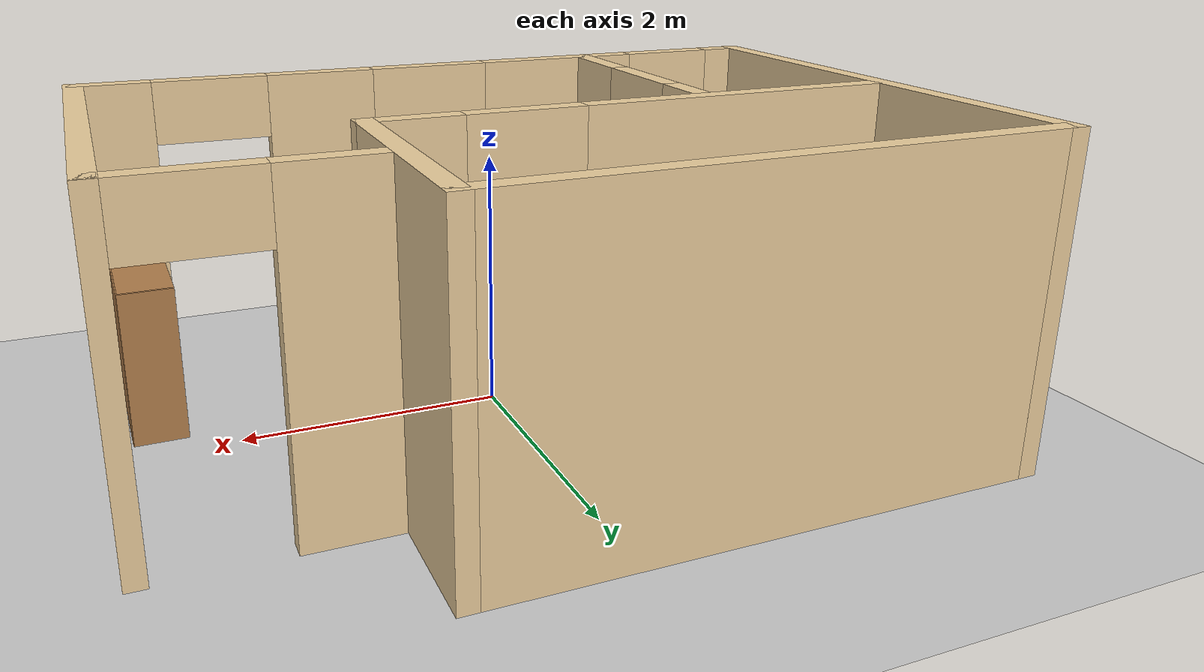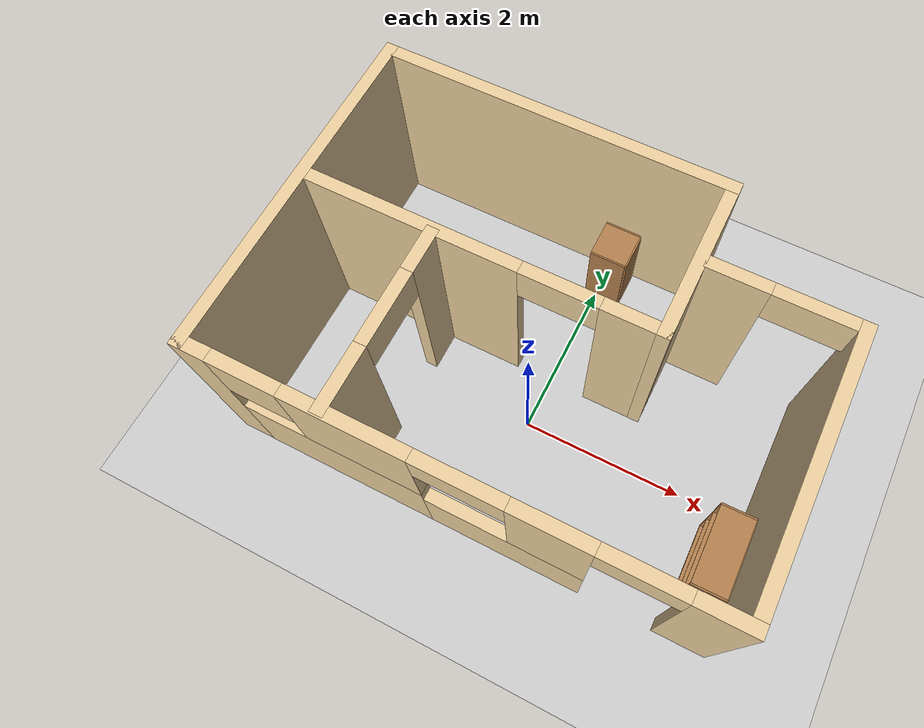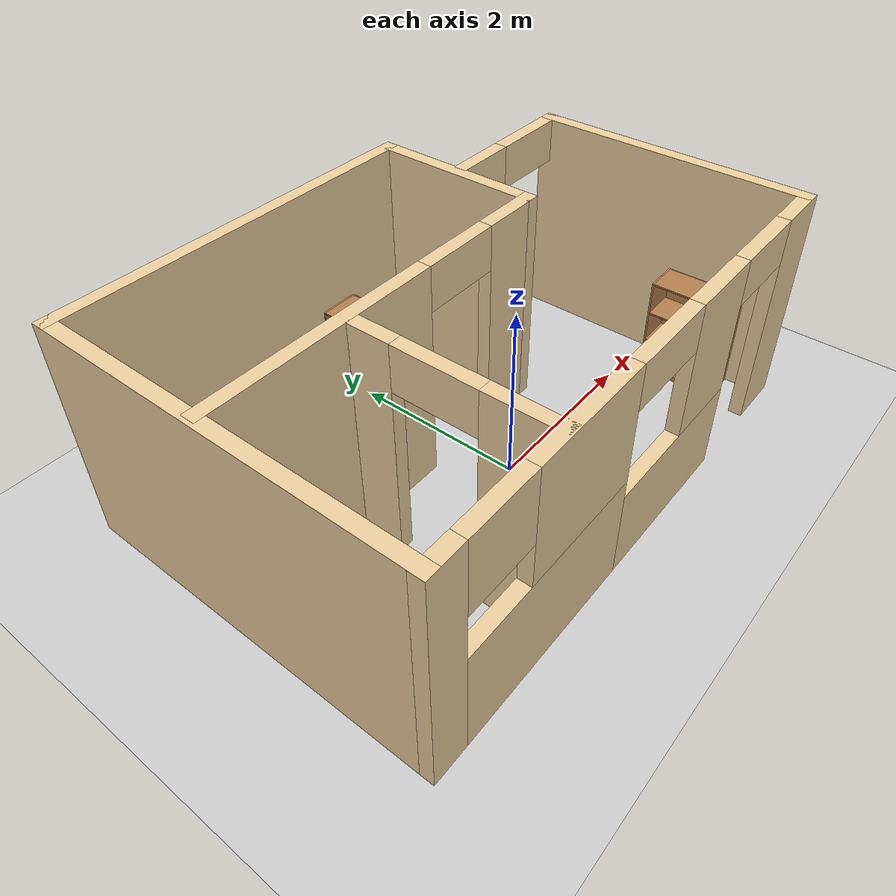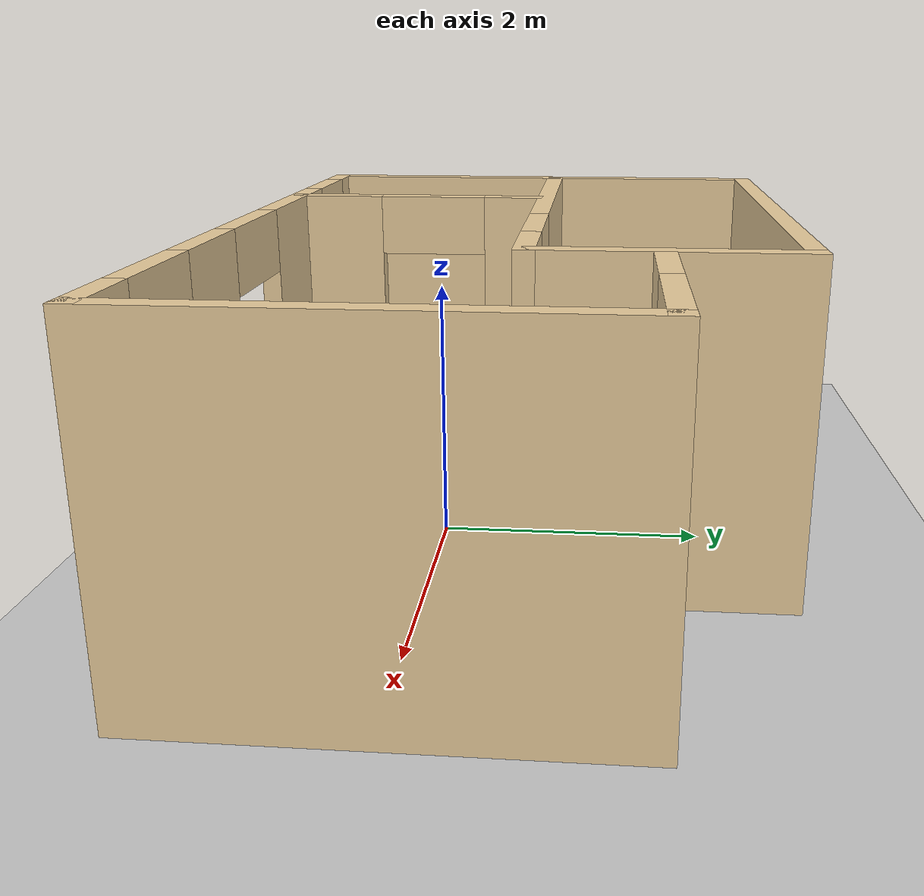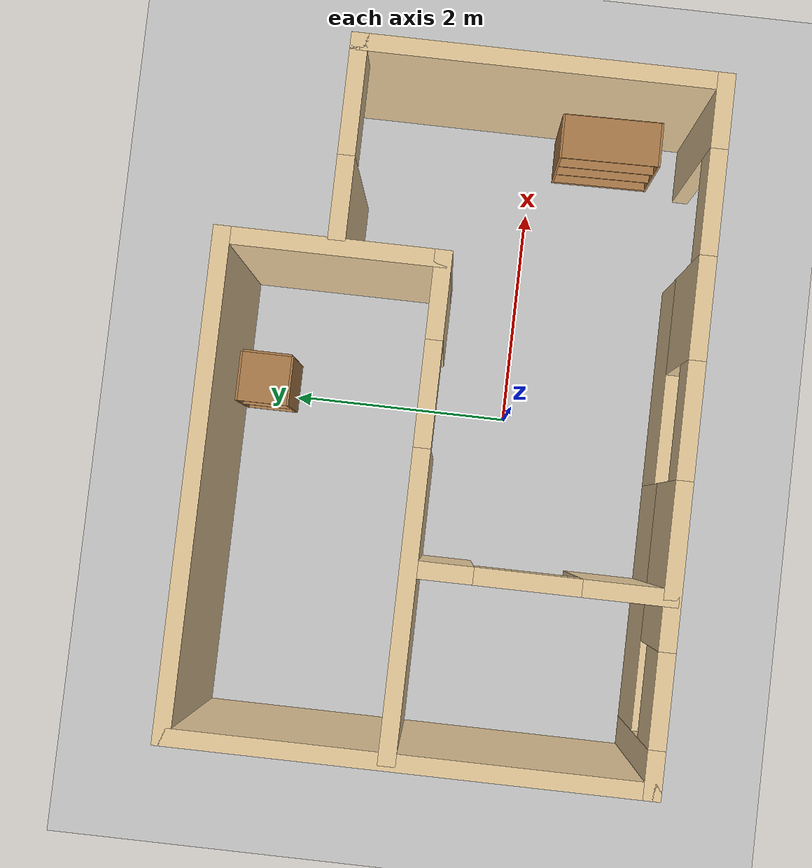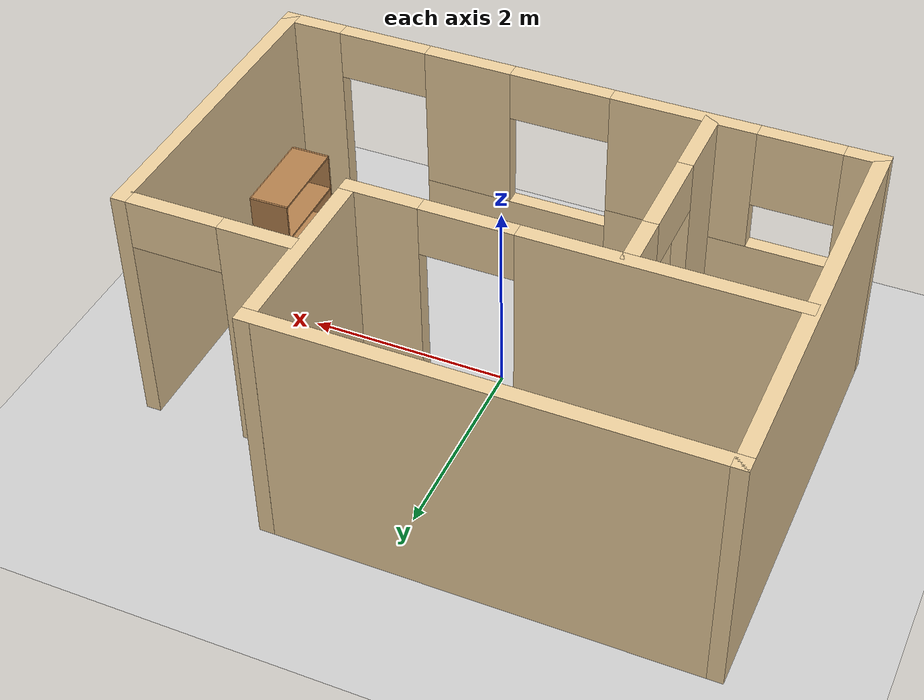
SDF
<sdf version="1.6">
 <world name="default">
  <light name="sun" type="directional">
   <pose>0 0 10 0 -0 0</pose>
   <diffuse>0.8 0.8 0.8 1</diffuse>
   <specular>0.2 0.2 0.2 1</specular>
   <attenuation>
    <range>1000</range>
    <constant>0.9</constant>
    <linear>0.01</linear>
    <quadratic>0.001</quadratic>
   </attenuation>
   <direction>-0.5 0.1 -0.9</direction>
  </light>
  <model name="ground_plane">
   <static>1</static>
   <link name="link">
    <collision name="collision">
     <geometry><plane><normal>0 0 1</normal><size>100 100</size></plane></geometry>
     <surface>
      <contact><collide_bitmask>65535</collide_bitmask></contact>
      <friction><ode><mu>100</mu><mu2>50</mu2></ode></friction>
     </surface>
    </collision>
    <visual name="visual">
     <cast_shadows>0</cast_shadows>
     <geometry><plane><normal>0 0 1</normal><size>100 100</size></plane></geometry>
     <material>
      <script><uri>file://media/materials/scripts/gazebo.material</uri><name>Gazebo/Grey</name></script>
     </material>
    </visual>
   </link>
  </model>
  <gravity>0 0 -9.8</gravity>
  <magnetic_field>6e-06 2.3e-05 -4.2e-05</magnetic_field>
  <atmosphere type="adiabatic"/>
  <physics name="default_physics" default="0" type="ode">
   <max_step_size>0.001</max_step_size>
   <real_time_factor>1</real_time_factor>
   <real_time_update_rate>1000</real_time_update_rate>
  </physics>
  <scene><ambient>0.4 0.4 0.4 1</ambient><background>0.7 0.7 0.7 1</background><shadows>1</shadows></scene>
  <audio><device>default</device></audio>
  <spherical_coordinates>
   <surface_model>EARTH_WGS84</surface_model>
   <latitude_deg>0</latitude_deg>
   <longitude_deg>0</longitude_deg>
   <elevation>0</elevation>
   <heading_deg>0</heading_deg>
  </spherical_coordinates>
  <model name="home">
   <pose>-0.08018 0.543704 0 0 -0 0</pose>
   <link name="Wall_0">
    <collision name="Wall_0_Collision">
     <geometry><box><size>4.184 0.15 2.5</size></box></geometry>
     <pose>0 0 1.25 0 -0 0</pose>
    </collision>
    <visual name="Wall_0_Visual">
     <pose>0 0 1.25 0 -0 0</pose>
     <geometry><box><size>4.184 0.15 2.5</size></box></geometry>
     <material>
      <script><uri>file://media/materials/scripts/gazebo.material</uri><name>Gazebo/Grey</name></script>
      <ambient>0.921569 0.807843 0.615686 1</ambient>
     </material>
     <meta><layer>0</layer></meta>
    </visual>
    <pose>-2.95 -0.000177 0 0 -0 1.5708</pose>
   </link>
   <link name="Wall_1">
    <pose>-0.87 2.01682 0 0 -0 0</pose>
    <visual name="Wall_1_Visual_0">
     <pose>0 0 1.25 0 -0 0</pose>
     <geometry><box><size>4.31 0.15 2.5</size></box></geometry>
     <material>
      <script><uri>file://media/materials/scripts/gazebo.material</uri><name>Gazebo/Grey</name></script>
      <ambient>0.921569 0.807843 0.615686 1</ambient>
     </material>
     <meta><layer>0</layer></meta>
    </visual>
    <collision name="Wall_1_Collision_0">
     <geometry><box><size>4.31 0.15 2.5</size></box></geometry>
     <pose>0 0 1.25 0 -0 0</pose>
    </collision>
   </link>
   <link name="Wall_2">
    <collision name="Wall_2_Collision">
     <geometry><box><size>2.00271 0.15 2.5</size></box></geometry>
     <pose>0 0 1.25 0 -0 0</pose>
    </collision>
    <visual name="Wall_2_Visual">
     <pose>0 0 1.25 0 -0 0</pose>
     <geometry><box><size>2.00271 0.15 2.5</size></box></geometry>
     <material>
      <script><uri>file://media/materials/scripts/gazebo.material</uri><name>Gazebo/Grey</name></script>
      <ambient>0.921569 0.807843 0.615686 1</ambient>
     </material>
     <meta><layer>0</layer></meta>
    </visual>
    <pose>1.21 1.09082 0 0 -0 -1.5708</pose>
   </link>
   <link name="Wall_3">
    <pose>-0.849886 0.164732 0 0 -0 -3.14155</pose>
    <visual name="Wall_3_Visual_0">
     <pose>-1.75754 0 1.25 0 -0 0</pose>
     <geometry><box><size>0.754702 0.15 2.5</size></box></geometry>
     <material>
      <script><uri>file://media/materials/scripts/gazebo.material</uri><name>Gazebo/Grey</name></script>
      <ambient>0.921569 0.807843 0.615686 1</ambient>
     </material>
     <meta><layer>0</layer></meta>
    </visual>
    <collision name="Wall_3_Collision_0">
     <geometry><box><size>0.754702 0.15 2.5</size></box></geometry>
     <pose>-1.75754 0 1.25 0 -0 0</pose>
    </collision>
    <visual name="Wall_3_Visual_1">
     <pose>0.827351 0 1.25 0 -0 0</pose>
     <geometry><box><size>2.61507 0.15 2.5</size></box></geometry>
     <material>
      <script><uri>file://media/materials/scripts/gazebo.material</uri><name>Gazebo/Grey</name></script>
      <ambient>0.921569 0.807843 0.615686 1</ambient>
     </material>
     <meta><layer>0</layer></meta>
    </visual>
    <collision name="Wall_3_Collision_1">
     <geometry><box><size>2.61507 0.15 2.5</size></box></geometry>
     <pose>0.827351 0 1.25 0 -0 0</pose>
    </collision>
    <visual name="Wall_3_Visual_2">
     <pose>-0.930184 0 2.25 0 -0 0</pose>
     <geometry><box><size>0.9 0.15 0.5</size></box></geometry>
     <material>
      <script><uri>file://media/materials/scripts/gazebo.material</uri><name>Gazebo/Grey</name></script>
      <ambient>0.921569 0.807843 0.615686 1</ambient>
     </material>
     <meta><layer>0</layer></meta>
    </visual>
    <collision name="Wall_3_Collision_2">
     <geometry><box><size>0.9 0.15 0.5</size></box></geometry>
     <pose>-0.930184 0 2.25 0 -0 0</pose>
    </collision>
   </link>
   <link name="Wall_5">
    <pose>-0 -2.01718 0 0 -0 0</pose>
    <visual name="Wall_5_Visual_0">
     <pose>-2.81883 0 1.25 0 -0 0</pose>
     <geometry><box><size>0.412348 0.15 2.5</size></box></geometry>
     <material>
      <script><uri>file://media/materials/scripts/gazebo.material</uri><name>Gazebo/Grey</name></script>
      <ambient>0.921569 0.807843 0.615686 1</ambient>
     </material>
     <meta><layer>0</layer></meta>
    </visual>
    <collision name="Wall_5_Collision_0">
     <geometry><box><size>0.412348 0.15 2.5</size></box></geometry>
     <pose>-2.81883 0 1.25 0 -0 0</pose>
    </collision>
    <visual name="Wall_5_Visual_1">
     <pose>2.70287 0 1.25 0 -0 0</pose>
     <geometry><box><size>0.644256 0.15 2.5</size></box></geometry>
     <material>
      <script><uri>file://media/materials/scripts/gazebo.material</uri><name>Gazebo/Grey</name></script>
      <ambient>0.921569 0.807843 0.615686 1</ambient>
     </material>
     <meta><layer>0</layer></meta>
    </visual>
    <collision name="Wall_5_Collision_1">
     <geometry><box><size>0.644256 0.15 2.5</size></box></geometry>
     <pose>2.70287 0 1.25 0 -0 0</pose>
    </collision>
    <visual name="Wall_5_Visual_2">
     <pose>-1.50612 0 0.6 0 -0 0</pose>
     <geometry><box><size>2.21306 0.15 1.2</size></box></geometry>
     <material>
      <script><uri>file://media/materials/scripts/gazebo.material</uri><name>Gazebo/Grey</name></script>
      <ambient>0.921569 0.807843 0.615686 1</ambient>
     </material>
     <meta><layer>0</layer></meta>
    </visual>
    <collision name="Wall_5_Collision_2">
     <geometry><box><size>2.21306 0.15 1.2</size></box></geometry>
     <pose>-1.50612 0 0.6 0 -0 0</pose>
    </collision>
    <visual name="Wall_5_Visual_3">
     <pose>0.540576 0 0.5 0 -0 0</pose>
     <geometry><box><size>1.88034 0.15 1</size></box></geometry>
     <material>
      <script><uri>file://media/materials/scripts/gazebo.material</uri><name>Gazebo/Grey</name></script>
      <ambient>0.921569 0.807843 0.615686 1</ambient>
     </material>
     <meta><layer>0</layer></meta>
    </visual>
    <collision name="Wall_5_Collision_3">
     <geometry><box><size>1.88034 0.15 1</size></box></geometry>
     <pose>0.540576 0 0.5 0 -0 0</pose>
    </collision>
    <visual name="Wall_5_Visual_4">
     <pose>1.04058 0 1.75 0 -0 0</pose>
     <geometry><box><size>0.880335 0.15 1.5</size></box></geometry>
     <material>
      <script><uri>file://media/materials/scripts/gazebo.material</uri><name>Gazebo/Grey</name></script>
      <ambient>0.921569 0.807843 0.615686 1</ambient>
     </material>
     <meta><layer>0</layer></meta>
    </visual>
    <collision name="Wall_5_Collision_4">
     <geometry><box><size>0.880335 0.15 1.5</size></box></geometry>
     <pose>1.04058 0 1.75 0 -0 0</pose>
    </collision>
    <visual name="Wall_5_Visual_5">
     <pose>-1.10612 0 1.85 0 -0 0</pose>
     <geometry><box><size>1.41306 0.15 1.3</size></box></geometry>
     <material>
      <script><uri>file://media/materials/scripts/gazebo.material</uri><name>Gazebo/Grey</name></script>
      <ambient>0.921569 0.807843 0.615686 1</ambient>
     </material>
     <meta><layer>0</layer></meta>
    </visual>
    <collision name="Wall_5_Collision_5">
     <geometry><box><size>1.41306 0.15 1.3</size></box></geometry>
     <pose>-1.10612 0 1.85 0 -0 0</pose>
    </collision>
    <visual name="Wall_5_Visual_6">
     <pose>-2.21265 0 2.1 0 -0 0</pose>
     <geometry><box><size>0.8 0.15 0.8</size></box></geometry>
     <material>
      <script><uri>file://media/materials/scripts/gazebo.material</uri><name>Gazebo/Grey</name></script>
      <ambient>0.921569 0.807843 0.615686 1</ambient>
     </material>
     <meta><layer>0</layer></meta>
    </visual>
    <collision name="Wall_5_Collision_6">
     <geometry><box><size>0.8 0.15 0.8</size></box></geometry>
     <pose>-2.21265 0 2.1 0 -0 0</pose>
    </collision>
    <visual name="Wall_5_Visual_7">
     <pose>1.93074 0 2.25 0 -0 0</pose>
     <geometry><box><size>0.9 0.15 0.5</size></box></geometry>
     <material>
      <script><uri>file://media/materials/scripts/gazebo.material</uri><name>Gazebo/Grey</name></script>
      <ambient>0.921569 0.807843 0.615686 1</ambient>
     </material>
     <meta><layer>0</layer></meta>
    </visual>
    <collision name="Wall_5_Collision_7">
     <geometry><box><size>0.9 0.15 0.5</size></box></geometry>
     <pose>1.93074 0 2.25 0 -0 0</pose>
    </collision>
    <visual name="Wall_5_Visual_8">
     <pose>0.100409 0 2.25 0 -0 0</pose>
     <geometry><box><size>1 0.15 0.5</size></box></geometry>
     <material>
      <script><uri>file://media/materials/scripts/gazebo.material</uri><name>Gazebo/Grey</name></script>
      <ambient>0.921569 0.807843 0.615686 1</ambient>
     </material>
     <meta><layer>0</layer></meta>
    </visual>
    <collision name="Wall_5_Collision_8">
     <geometry><box><size>1 0.15 0.5</size></box></geometry>
     <pose>0.100409 0 2.25 0 -0 0</pose>
    </collision>
   </link>
   <link name="Wall_6">
    <collision name="Wall_6_Collision">
     <geometry><box><size>3.23 0.15 2.5</size></box></geometry>
     <pose>0 0 1.25 0 -0 0</pose>
    </collision>
    <visual name="Wall_6_Visual">
     <pose>0 0 1.25 0 -0 0</pose>
     <geometry><box><size>3.23 0.15 2.5</size></box></geometry>
     <material>
      <script><uri>file://media/materials/scripts/gazebo.material</uri><name>Gazebo/Grey</name></script>
      <ambient>0.921569 0.807843 0.615686 1</ambient>
     </material>
     <meta><layer>0</layer></meta>
    </visual>
    <pose>2.95 -0.477177 0 0 -0 1.5708</pose>
   </link>
   <link name="Wall_7">
    <pose>2.145 1.06282 0 0 -0 3.14159</pose>
    <visual name="Wall_7_Visual_0">
     <pose>-0.809267 0 1.25 0 -0 0</pose>
     <geometry><box><size>0.141369 0.15 2.5</size></box></geometry>
     <material>
      <script><uri>file://media/materials/scripts/gazebo.material</uri><name>Gazebo/Grey</name></script>
      <ambient>0.921569 0.807843 0.615686 1</ambient>
     </material>
     <meta><layer>0</layer></meta>
    </visual>
    <collision name="Wall_7_Collision_0">
     <geometry><box><size>0.141369 0.15 2.5</size></box></geometry>
     <pose>-0.809267 0 1.25 0 -0 0</pose>
    </collision>
    <visual name="Wall_7_Visual_1">
     <pose>0.520685 0 1.25 0 -0 0</pose>
     <geometry><box><size>0.718535 0.15 2.5</size></box></geometry>
     <material>
      <script><uri>file://media/materials/scripts/gazebo.material</uri><name>Gazebo/Grey</name></script>
      <ambient>0.921569 0.807843 0.615686 1</ambient>
     </material>
     <meta><layer>0</layer></meta>
    </visual>
    <collision name="Wall_7_Collision_1">
     <geometry><box><size>0.718535 0.15 2.5</size></box></geometry>
     <pose>0.520685 0 1.25 0 -0 0</pose>
    </collision>
    <visual name="Wall_7_Visual_2">
     <pose>-0.288583 0 2.25 0 -0 0</pose>
     <geometry><box><size>0.9 0.15 0.5</size></box></geometry>
     <material>
      <script><uri>file://media/materials/scripts/gazebo.material</uri><name>Gazebo/Grey</name></script>
      <ambient>0.921569 0.807843 0.615686 1</ambient>
     </material>
     <meta><layer>0</layer></meta>
    </visual>
    <collision name="Wall_7_Collision_2">
     <geometry><box><size>0.9 0.15 0.5</size></box></geometry>
     <pose>-0.288583 0 2.25 0 -0 0</pose>
    </collision>
   </link>
   <link name="Wall_9">
    <pose>-1.36784 -0.947063 0 0 -0 1.5708</pose>
    <visual name="Wall_9_Visual_0">
     <pose>-0.724985 0 1.25 0 -0 0</pose>
     <geometry><box><size>0.800029 0.15 2.5</size></box></geometry>
     <material>
      <script><uri>file://media/materials/scripts/gazebo.material</uri><name>Gazebo/Grey</name></script>
      <ambient>0.921569 0.807843 0.615686 1</ambient>
     </material>
     <meta><layer>0</layer></meta>
    </visual>
    <collision name="Wall_9_Collision_0">
     <geometry><box><size>0.800029 0.15 2.5</size></box></geometry>
     <pose>-0.724985 0 1.25 0 -0 0</pose>
    </collision>
    <visual name="Wall_9_Visual_1">
     <pose>0.850015 0 1.25 0 -0 0</pose>
     <geometry><box><size>0.549971 0.15 2.5</size></box></geometry>
     <material>
      <script><uri>file://media/materials/scripts/gazebo.material</uri><name>Gazebo/Grey</name></script>
      <ambient>0.921569 0.807843 0.615686 1</ambient>
     </material>
     <meta><layer>0</layer></meta>
    </visual>
    <collision name="Wall_9_Collision_1">
     <geometry><box><size>0.549971 0.15 2.5</size></box></geometry>
     <pose>0.850015 0 1.25 0 -0 0</pose>
    </collision>
    <visual name="Wall_9_Visual_2">
     <pose>0.125029 0 2.25 0 -0 0</pose>
     <geometry><box><size>0.9 0.15 0.5</size></box></geometry>
     <material>
      <script><uri>file://media/materials/scripts/gazebo.material</uri><name>Gazebo/Grey</name></script>
      <ambient>0.921569 0.807843 0.615686 1</ambient>
     </material>
     <meta><layer>0</layer></meta>
    </visual>
    <collision name="Wall_9_Collision_2">
     <geometry><box><size>0.9 0.15 0.5</size></box></geometry>
     <pose>0.125029 0 2.25 0 -0 0</pose>
    </collision>
   </link>
   <static>1</static>
  </model>
  <model name="bookshelf">
   <static>1</static>
   <link name="link">
    <inertial><mass>1</mass></inertial>
    <collision name="back">
     <pose>0 0.005 0.6 0 -0 0</pose>
     <geometry><box><size>0.9 0.01 1.2</size></box></geometry>
    </collision>
    <visual name="visual1">
     <pose>0 0.005 0.6 0 -0 0</pose>
     <geometry><box><size>0.9 0.01 1.2</size></box></geometry>
     <material>
      <script><uri>file://media/materials/scripts/gazebo.material</uri><name>Gazebo/Wood</name></script>
     </material>
    </visual>
    <collision name="left_side">
     <pose>0.45 -0.195 0.6 0 -0 0</pose>
     <geometry><box><size>0.02 0.4 1.2</size></box></geometry>
    </collision>
    <visual name="visual2">
     <pose>0.45 -0.195 0.6 0 -0 0</pose>
     <geometry><box><size>0.02 0.4 1.2</size></box></geometry>
     <material>
      <script><uri>file://media/materials/scripts/gazebo.material</uri><name>Gazebo/Wood</name></script>
     </material>
    </visual>
    <collision name="right_side">
     <pose>-0.45 -0.195 0.6 0 -0 0</pose>
     <geometry><box><size>0.02 0.4 1.2</size></box></geometry>
    </collision>
    <visual name="visual3">
     <pose>-0.45 -0.195 0.6 0 -0 0</pose>
     <geometry><box><size>0.02 0.4 1.2</size></box></geometry>
     <material>
      <script><uri>file://media/materials/scripts/gazebo.material</uri><name>Gazebo/Wood</name></script>
     </material>
    </visual>
    <collision name="bottom">
     <pose>0 -0.195 0.03 0 -0 0</pose>
     <geometry><box><size>0.88 0.4 0.06</size></box></geometry>
    </collision>
    <visual name="visual4">
     <pose>0 -0.195 0.03 0 -0 0</pose>
     <geometry><box><size>0.88 0.4 0.06</size></box></geometry>
     <material>
      <script><uri>file://media/materials/scripts/gazebo.material</uri><name>Gazebo/Wood</name></script>
     </material>
    </visual>
    <collision name="top">
     <pose>0 -0.195 1.19 0 -0 0</pose>
     <geometry><box><size>0.88 0.4 0.02</size></box></geometry>
    </collision>
    <visual name="visual5">
     <pose>0 -0.195 1.19 0 -0 0</pose>
     <geometry><box><size>0.88 0.4 0.02</size></box></geometry>
     <material>
      <script><uri>file://media/materials/scripts/gazebo.material</uri><name>Gazebo/Wood</name></script>
     </material>
    </visual>
    <collision name="low_shelf">
     <pose>0 -0.195 0.43 0 -0 0</pose>
     <geometry><box><size>0.88 0.4 0.02</size></box></geometry>
    </collision>
    <visual name="visual6">
     <pose>0 -0.195 0.43 0 -0 0</pose>
     <geometry><box><size>0.88 0.4 0.02</size></box></geometry>
     <material>
      <script><uri>file://media/materials/scripts/gazebo.material</uri><name>Gazebo/Wood</name></script>
     </material>
    </visual>
    <collision name="high_shelf">
     <pose>0 -0.195 0.8 0 -0 0</pose>
     <geometry><box><size>0.88 0.4 0.02</size></box></geometry>
    </collision>
    <visual name="visual7">
     <pose>0 -0.195 0.8 0 -0 0</pose>
     <geometry><box><size>0.88 0.4 0.02</size></box></geometry>
     <material>
      <script><uri>file://media/materials/scripts/gazebo.material</uri><name>Gazebo/Wood</name></script>
     </material>
    </visual>
   </link>
   <pose>2.76181 -0.664165 0 0 0 -1.55567</pose>
  </model>
  <model name="cabinet">
   <static>1</static>
   <link name="cabinet_bottom_plate">
    <inertial>
     <pose>0 0 -1 0 -0 0</pose>
     <inertia><ixx>2.05</ixx><ixy>0</ixy><ixz>0</ixz><iyy>2.05</iyy><iyz>0</iyz><izz>2.05</izz></inertia>
     <mass>25</mass>
    </inertial>
    <collision name="cabinet_bottom_plate_geom">
     <pose>0 0 0.01 0 -0 0</pose>
     <geometry><box><size>0.45 0.45 0.02</size></box></geometry>
    </collision>
    <visual name="cabinet_bottom_plate_geom_visual">
     <pose>0 0 0.01 0 -0 0</pose>
     <geometry><box><size>0.45 0.45 0.02</size></box></geometry>
     <material>
      <script><uri>file://media/materials/scripts/gazebo.material</uri><name>Gazebo/Wood</name></script>
     </material>
    </visual>
    <collision name="cabinet_bottom_plate_geom_cabinet_back_plate">
     <pose>0.235 0 0.51 0 -0 0</pose>
     <geometry><box><size>0.02 0.45 1.02</size></box></geometry>
    </collision>
    <visual name="cabinet_bottom_plate_geom_cabinet_back_plate_visual">
     <pose>0.235 0 0.51 0 -0 0</pose>
     <geometry><box><size>0.02 0.45 1.02</size></box></geometry>
     <material>
      <script><uri>file://media/materials/scripts/gazebo.material</uri><name>Gazebo/Wood</name></script>
     </material>
    </visual>
    <collision name="cabinet_bottom_plate_geom_cabinet_left_plate">
     <pose>0 0.235 0.51 0 -0 0</pose>
     <geometry><box><size>0.45 0.02 1.02</size></box></geometry>
    </collision>
    <visual name="cabinet_bottom_plate_geom_cabinet_left_plate_visual">
     <pose>0 0.235 0.51 0 -0 0</pose>
     <geometry><box><size>0.45 0.02 1.02</size></box></geometry>
     <material>
      <script><uri>file://media/materials/scripts/gazebo.material</uri><name>Gazebo/Wood</name></script>
     </material>
    </visual>
    <collision name="cabinet_bottom_plate_geom_cabinet_middle_plate">
     <pose>0 0 0.51 0 -0 0</pose>
     <geometry><box><size>0.45 0.45 0.02</size></box></geometry>
    </collision>
    <visual name="cabinet_bottom_plate_geom_cabinet_middle_plate_visual">
     <pose>0 0 0.51 0 -0 0</pose>
     <geometry><box><size>0.45 0.45 0.02</size></box></geometry>
     <material>
      <script><uri>file://media/materials/scripts/gazebo.material</uri><name>Gazebo/Wood</name></script>
     </material>
    </visual>
    <collision name="cabinet_bottom_plate_geom_cabinet_right_plate">
     <pose>0 -0.235 0.51 0 -0 0</pose>
     <geometry><box><size>0.45 0.02 1.02</size></box></geometry>
    </collision>
    <visual name="cabinet_bottom_plate_geom_cabinet_right_plate_visual">
     <pose>0 -0.235 0.51 0 -0 0</pose>
     <geometry><box><size>0.45 0.02 1.02</size></box></geometry>
     <material>
      <script><uri>file://media/materials/scripts/gazebo.material</uri><name>Gazebo/Wood</name></script>
     </material>
    </visual>
    <collision name="cabinet_bottom_plate_geom_cabinet_top_plate">
     <pose>0 0 1.01 0 -0 0</pose>
     <geometry><box><size>0.45 0.45 0.02</size></box></geometry>
    </collision>
    <visual name="cabinet_bottom_plate_geom_cabinet_top_plate_visual">
     <pose>0 0 1.01 0 -0 0</pose>
     <geometry><box><size>0.45 0.45 0.02</size></box></geometry>
     <material>
      <script><uri>file://media/materials/scripts/gazebo.material</uri><name>Gazebo/Wood</name></script>
     </material>
    </visual>
   </link>
   <pose>0.080286 2.23159 0 0 -0 0</pose>
  </model>
 </world>
</sdf>
